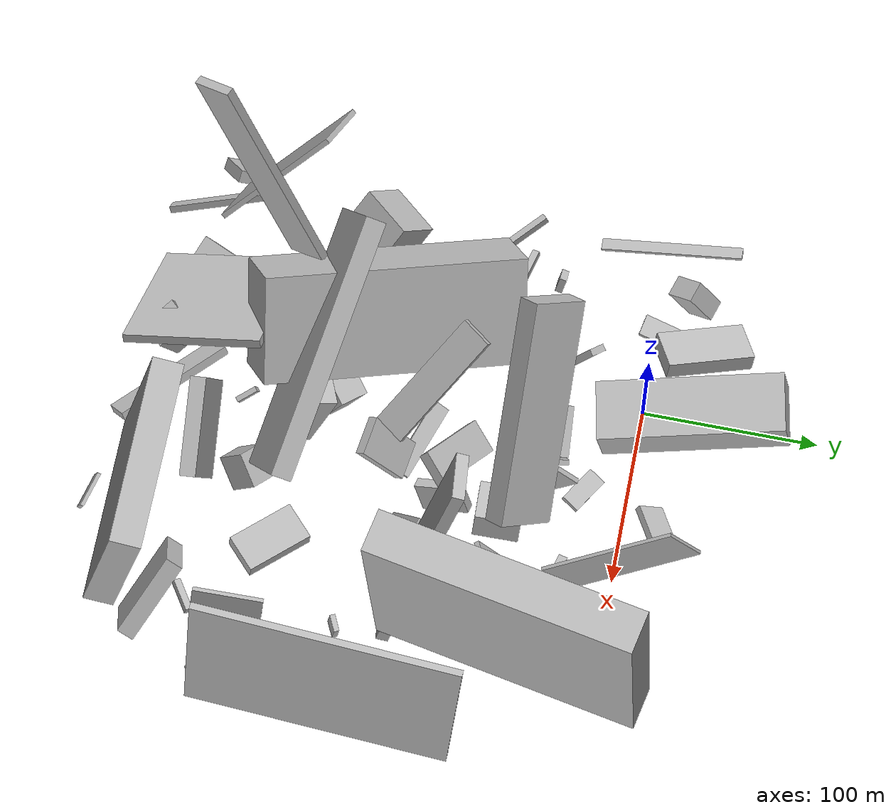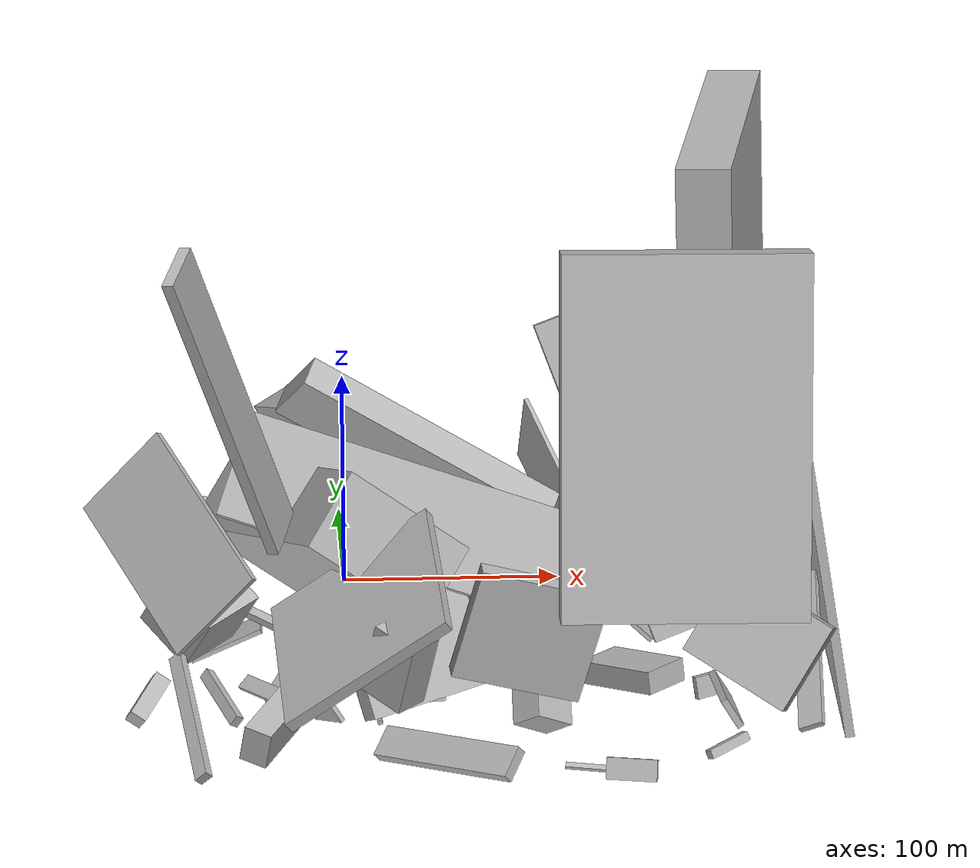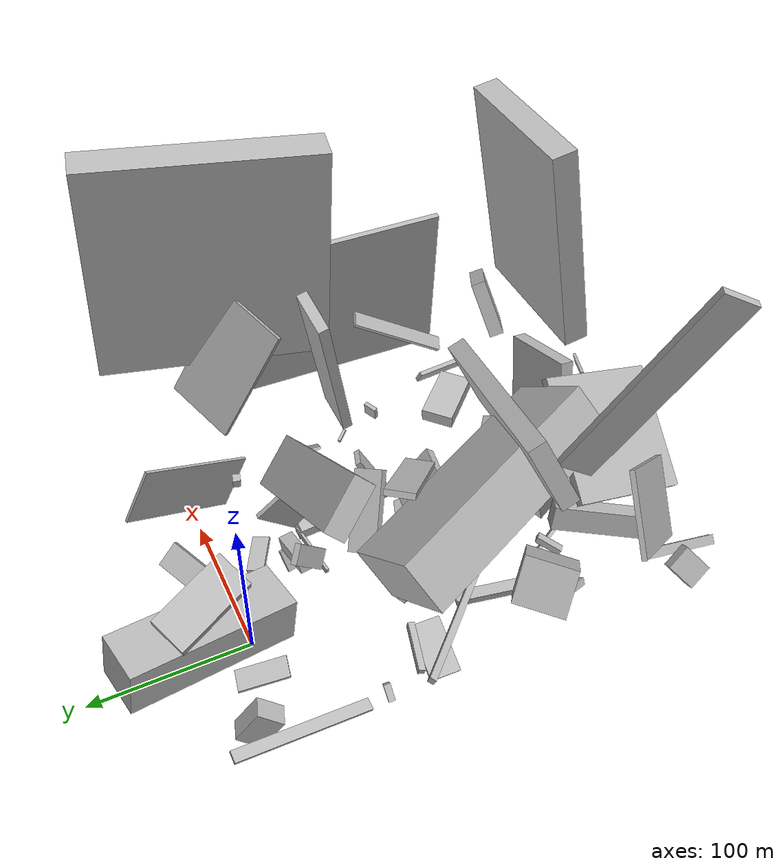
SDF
<sdf version="1.6">
 <world name="default">
  <model name="building_7">
   <static>0</static>
   <pose>-35.37634385524697 -79.82885916683912 56.13320116649942 1.1754656379227297 -0.8605714179726096 0.6549388538264809</pose>
   <link name="link">
    <gravity>0</gravity>
    <pose>0 0 75.0 0 0 0</pose>
    <collision name="collision"><geometry><box><size>36 62 150</size></box></geometry></collision>
    <visual name="visual">
     <cast_shadows>0</cast_shadows>
     <geometry><box><size>36 62 150</size></box></geometry>
     <material>
      <script>
       <uri>model://HANNAS_wall/materials/scripts</uri>
       <uri>model://HANNAS_wall/materials/textures</uri>
       <name>vrc/HANNAS_wall</name>
      </script>
     </material>
    </visual>
   </link>
  </model>
  <model name="building_10">
   <static>0</static>
   <pose>199.75939614173308 -143.61442118987642 66.97941842244322 1.405398066791633 0.032576267483294154 1.5148054013510757</pose>
   <link name="link">
    <gravity>0</gravity>
    <pose>0 0 2.0 0 0 0</pose>
    <collision name="collision"><geometry><box><size>150 128 4</size></box></geometry></collision>
    <visual name="visual">
     <cast_shadows>0</cast_shadows>
     <geometry><box><size>150 128 4</size></box></geometry>
     <material>
      <script>
       <uri>model://HANNAS_wall/materials/scripts</uri>
       <uri>model://HANNAS_wall/materials/textures</uri>
       <name>vrc/HANNAS_wall</name>
      </script>
     </material>
    </visual>
   </link>
  </model>
  <model name="building_12">
   <static>0</static>
   <pose>17.908233750072107 31.308224539765238 23.376434881511734 -1.5877761756979039 -0.14215236009023843 1.7673965393844318</pose>
   <link name="link">
    <gravity>0</gravity>
    <pose>0 0 17.0 0 0 0</pose>
    <collision name="collision"><geometry><box><size>106 30 34</size></box></geometry></collision>
    <visual name="visual">
     <cast_shadows>0</cast_shadows>
     <geometry><box><size>106 30 34</size></box></geometry>
     <material>
      <script>
       <uri>model://HANNAS_wall/materials/scripts</uri>
       <uri>model://HANNAS_wall/materials/textures</uri>
       <name>vrc/HANNAS_wall</name>
      </script>
     </material>
    </visual>
   </link>
  </model>
  <model name="building_13">
   <static>0</static>
   <pose>87.20154148661504 -56.308859797103885 48.33672092008506 -0.8636523174317932 0.6482194262004974 2.0591435352742304</pose>
   <link name="link">
    <gravity>0</gravity>
    <pose>0 0 64.0 0 0 0</pose>
    <collision name="collision"><geometry><box><size>35 14 128</size></box></geometry></collision>
    <visual name="visual">
     <cast_shadows>0</cast_shadows>
     <geometry><box><size>35 14 128</size></box></geometry>
     <material>
      <script>
       <uri>model://HANNAS_wall/materials/scripts</uri>
       <uri>model://HANNAS_wall/materials/textures</uri>
       <name>vrc/HANNAS_wall</name>
      </script>
     </material>
    </visual>
   </link>
  </model>
  <model name="building_18">
   <static>0</static>
   <pose>-22.268983301284038 -231.2250630682057 27.73519998412533 1.3262885029804963 0.15194075545650287 -2.017616570688222</pose>
   <link name="link">
    <gravity>0</gravity>
    <pose>0 0 6.0 0 0 0</pose>
    <collision name="collision"><geometry><box><size>71 16 12</size></box></geometry></collision>
    <visual name="visual">
     <cast_shadows>0</cast_shadows>
     <geometry><box><size>71 16 12</size></box></geometry>
     <material>
      <script>
       <uri>model://HANNAS_wall/materials/scripts</uri>
       <uri>model://HANNAS_wall/materials/textures</uri>
       <name>vrc/HANNAS_wall</name>
      </script>
     </material>
    </visual>
   </link>
  </model>
  <model name="building_22">
   <static>0</static>
   <pose>172.64674540773686 -43.25319528702598 83.02658972019377 0.050844142049338854 -0.028690400749932152 -0.19970684529259325</pose>
   <link name="link">
    <gravity>0</gravity>
    <pose>0 0 75.0 0 0 0</pose>
    <collision name="collision"><geometry><box><size>24 150 150</size></box></geometry></collision>
    <visual name="visual">
     <cast_shadows>0</cast_shadows>
     <geometry><box><size>24 150 150</size></box></geometry>
     <material>
      <script>
       <uri>model://HANNAS_wall/materials/scripts</uri>
       <uri>model://HANNAS_wall/materials/textures</uri>
       <name>vrc/HANNAS_wall</name>
      </script>
     </material>
    </visual>
   </link>
  </model>
  <model name="building_32">
   <static>0</static>
   <pose>91.9595428296833 -193.96650068513972 73.536874218739 -0.9692957055522151 -1.053303232051189 0.8513703144813367</pose>
   <link name="link">
    <gravity>0</gravity>
    <pose>0 0 75.0 0 0 0</pose>
    <collision name="collision"><geometry><box><size>46 12 150</size></box></geometry></collision>
    <visual name="visual">
     <cast_shadows>0</cast_shadows>
     <geometry><box><size>46 12 150</size></box></geometry>
     <material>
      <script>
       <uri>model://HANNAS_wall/materials/scripts</uri>
       <uri>model://HANNAS_wall/materials/textures</uri>
       <name>vrc/HANNAS_wall</name>
      </script>
     </material>
    </visual>
   </link>
  </model>
  <model name="building_33">
   <static>0</static>
   <pose>-71.28533931900245 -152.53147932357862 36.358138684460314 0.6634080557702714 -0.13776527083720133 0.8522295252504025</pose>
   <link name="link">
    <gravity>0</gravity>
    <pose>0 0 14.5 0 0 0</pose>
    <collision name="collision"><geometry><box><size>32 29 29</size></box></geometry></collision>
    <visual name="visual">
     <cast_shadows>0</cast_shadows>
     <geometry><box><size>32 29 29</size></box></geometry>
     <material>
      <script>
       <uri>model://HANNAS_wall/materials/scripts</uri>
       <uri>model://HANNAS_wall/materials/textures</uri>
       <name>vrc/HANNAS_wall</name>
      </script>
     </material>
    </visual>
   </link>
  </model>
  <model name="building_34">
   <static>0</static>
   <pose>-33.68719308623065 -143.24230125763256 4.944371780354979 1.5215713787839003 0.035612869714398254 1.3541824433385397</pose>
   <link name="link">
    <gravity>0</gravity>
    <pose>0 0 4.0 0 0 0</pose>
    <collision name="collision"><geometry><box><size>42 5 8</size></box></geometry></collision>
    <visual name="visual">
     <cast_shadows>0</cast_shadows>
     <geometry><box><size>42 5 8</size></box></geometry>
     <material>
      <script>
       <uri>model://HANNAS_wall/materials/scripts</uri>
       <uri>model://HANNAS_wall/materials/textures</uri>
       <name>vrc/HANNAS_wall</name>
      </script>
     </material>
    </visual>
   </link>
  </model>
  <model name="building_36">
   <static>0</static>
   <pose>49.215279147849266 -135.31893218015455 49.75282604158086 0.00441759923636645 -1.0238554763739798 -0.6480272119935063</pose>
   <link name="link">
    <gravity>0</gravity>
    <pose>0 0 38.5 0 0 0</pose>
    <collision name="collision"><geometry><box><size>4 19 77</size></box></geometry></collision>
    <visual name="visual">
     <cast_shadows>0</cast_shadows>
     <geometry><box><size>4 19 77</size></box></geometry>
     <material>
      <script>
       <uri>model://HANNAS_wall/materials/scripts</uri>
       <uri>model://HANNAS_wall/materials/textures</uri>
       <name>vrc/HANNAS_wall</name>
      </script>
     </material>
    </visual>
   </link>
  </model>
  <model name="building_39">
   <static>0</static>
   <pose>131.83799169275468 -269.7795638189098 79.52496255320497 0.168060298486547 -0.0031725530876417518 3.120574097686258</pose>
   <link name="link">
    <gravity>0</gravity>
    <pose>0 0 75.0 0 0 0</pose>
    <collision name="collision"><geometry><box><size>101 17 150</size></box></geometry></collision>
    <visual name="visual">
     <cast_shadows>0</cast_shadows>
     <geometry><box><size>101 17 150</size></box></geometry>
     <material>
      <script>
       <uri>model://HANNAS_wall/materials/scripts</uri>
       <uri>model://HANNAS_wall/materials/textures</uri>
       <name>vrc/HANNAS_wall</name>
      </script>
     </material>
    </visual>
   </link>
  </model>
  <model name="building_44">
   <static>0</static>
   <pose>64.78497882888301 -234.77074590187974 39.113507703404125 0.26298915779767845 -0.10905409287850117 1.6149011173050838</pose>
   <link name="link">
    <gravity>0</gravity>
    <pose>0 0 24.5 0 0 0</pose>
    <collision name="collision"><geometry><box><size>9 55 49</size></box></geometry></collision>
    <visual name="visual">
     <cast_shadows>0</cast_shadows>
     <geometry><box><size>9 55 49</size></box></geometry>
     <material>
      <script>
       <uri>model://HANNAS_wall/materials/scripts</uri>
       <uri>model://HANNAS_wall/materials/textures</uri>
       <name>vrc/HANNAS_wall</name>
      </script>
     </material>
    </visual>
   </link>
  </model>
  <model name="building_45">
   <static>0</static>
   <pose>-2.3374599007737764 -46.32025745562147 57.74331357457602 -0.7066894888824856 0.2311759284176999 0.6486493947640833</pose>
   <link name="link">
    <gravity>0</gravity>
    <pose>0 0 13.5 0 0 0</pose>
    <collision name="collision"><geometry><box><size>4 12 27</size></box></geometry></collision>
    <visual name="visual">
     <cast_shadows>0</cast_shadows>
     <geometry><box><size>4 12 27</size></box></geometry>
     <material>
      <script>
       <uri>model://HANNAS_wall/materials/scripts</uri>
       <uri>model://HANNAS_wall/materials/textures</uri>
       <name>vrc/HANNAS_wall</name>
      </script>
     </material>
    </visual>
   </link>
  </model>
  <model name="building_50">
   <static>0</static>
   <pose>-50.007280251557816 -116.54742318687431 30.07060712135791 1.1734598578645496 -0.1238292233177805 2.3688436630812255</pose>
   <link name="link">
    <gravity>0</gravity>
    <pose>0 0 2.0 0 0 0</pose>
    <collision name="collision"><geometry><box><size>121 4 4</size></box></geometry></collision>
    <visual name="visual">
     <cast_shadows>0</cast_shadows>
     <geometry><box><size>121 4 4</size></box></geometry>
     <material>
      <script>
       <uri>model://HANNAS_wall/materials/scripts</uri>
       <uri>model://HANNAS_wall/materials/textures</uri>
       <name>vrc/HANNAS_wall</name>
      </script>
     </material>
    </visual>
   </link>
  </model>
  <model name="building_53">
   <static>0</static>
   <pose>155.4479542393781 -233.94839806982225 7.496286353064457 0.21088196611619606 -0.36546871958466587 -1.0786684601524745</pose>
   <link name="link">
    <gravity>0</gravity>
    <pose>0 0 2.0 0 0 0</pose>
    <collision name="collision"><geometry><box><size>4 20 4</size></box></geometry></collision>
    <visual name="visual">
     <cast_shadows>0</cast_shadows>
     <geometry><box><size>4 20 4</size></box></geometry>
     <material>
      <script>
       <uri>model://HANNAS_wall/materials/scripts</uri>
       <uri>model://HANNAS_wall/materials/textures</uri>
       <name>vrc/HANNAS_wall</name>
      </script>
     </material>
    </visual>
   </link>
  </model>
  <model name="building_56">
   <static>0</static>
   <pose>69.1954099731737 13.63000319779589 13.742093269518962 2.2745068184563633 0.24545827281064708 -2.6317668817020405</pose>
   <link name="link">
    <gravity>0</gravity>
    <pose>0 0 8.5 0 0 0</pose>
    <collision name="collision"><geometry><box><size>28 4 17</size></box></geometry></collision>
    <visual name="visual">
     <cast_shadows>0</cast_shadows>
     <geometry><box><size>28 4 17</size></box></geometry>
     <material>
      <script>
       <uri>model://HANNAS_wall/materials/scripts</uri>
       <uri>model://HANNAS_wall/materials/textures</uri>
       <name>vrc/HANNAS_wall</name>
      </script>
     </material>
    </visual>
   </link>
  </model>
  <model name="building_58">
   <static>0</static>
   <pose>108.52481175404357 -104.49655727785829 81.31508576585884 1.2178762922116644 0.24379695146147823 1.5781546404994415</pose>
   <link name="link">
    <gravity>0</gravity>
    <pose>0 0 14.5 0 0 0</pose>
    <collision name="collision"><geometry><box><size>7 150 29</size></box></geometry></collision>
    <visual name="visual">
     <cast_shadows>0</cast_shadows>
     <geometry><box><size>7 150 29</size></box></geometry>
     <material>
      <script>
       <uri>model://HANNAS_wall/materials/scripts</uri>
       <uri>model://HANNAS_wall/materials/textures</uri>
       <name>vrc/HANNAS_wall</name>
      </script>
     </material>
    </visual>
   </link>
  </model>
  <model name="building_59">
   <static>0</static>
   <pose>-26.419378541625115 -197.28226236068653 13.516423411139069 -0.4803108394194448 -1.1122833938062404 -1.839298568274974</pose>
   <link name="link">
    <gravity>0</gravity>
    <pose>0 0 8.5 0 0 0</pose>
    <collision name="collision"><geometry><box><size>4 6 17</size></box></geometry></collision>
    <visual name="visual">
     <cast_shadows>0</cast_shadows>
     <geometry><box><size>4 6 17</size></box></geometry>
     <material>
      <script>
       <uri>model://HANNAS_wall/materials/scripts</uri>
       <uri>model://HANNAS_wall/materials/textures</uri>
       <name>vrc/HANNAS_wall</name>
      </script>
     </material>
    </visual>
   </link>
  </model>
  <model name="building_60">
   <static>0</static>
   <pose>33.11947779333519 -268.7866759939115 16.441630369520958 -0.8228746604277672 -0.12817011528214037 -0.7513610370837019</pose>
   <link name="link">
    <gravity>0</gravity>
    <pose>0 0 7.0 0 0 0</pose>
    <collision name="collision"><geometry><box><size>71 5 14</size></box></geometry></collision>
    <visual name="visual">
     <cast_shadows>0</cast_shadows>
     <geometry><box><size>71 5 14</size></box></geometry>
     <material>
      <script>
       <uri>model://HANNAS_wall/materials/scripts</uri>
       <uri>model://HANNAS_wall/materials/textures</uri>
       <name>vrc/HANNAS_wall</name>
      </script>
     </material>
    </visual>
   </link>
  </model>
  <model name="building_64">
   <static>0</static>
   <pose>-66.87548697713719 -253.3807809913465 36.672569554358866 2.5720921173396873 -0.6899166310533925 -2.5833922344450846</pose>
   <link name="link">
    <gravity>0</gravity>
    <pose>0 0 3.0 0 0 0</pose>
    <collision name="collision"><geometry><box><size>4 69 6</size></box></geometry></collision>
    <visual name="visual">
     <cast_shadows>0</cast_shadows>
     <geometry><box><size>4 69 6</size></box></geometry>
     <material>
      <script>
       <uri>model://HANNAS_wall/materials/scripts</uri>
       <uri>model://HANNAS_wall/materials/textures</uri>
       <name>vrc/HANNAS_wall</name>
      </script>
     </material>
    </visual>
   </link>
  </model>
  <model name="building_72">
   <static>0</static>
   <pose>96.56457738968938 -111.81023292704425 21.73531033113897 3.0313253054567517 -0.5228746418652945 -1.8355462850413922</pose>
   <link name="link">
    <gravity>0</gravity>
    <pose>0 0 18.5 0 0 0</pose>
    <collision name="collision"><geometry><box><size>4 14 37</size></box></geometry></collision>
    <visual name="visual">
     <cast_shadows>0</cast_shadows>
     <geometry><box><size>4 14 37</size></box></geometry>
     <material>
      <script>
       <uri>model://HANNAS_wall/materials/scripts</uri>
       <uri>model://HANNAS_wall/materials/textures</uri>
       <name>vrc/HANNAS_wall</name>
      </script>
     </material>
    </visual>
   </link>
  </model>
  <model name="building_75">
   <static>0</static>
   <pose>-63.362825687802946 -59.040237959251385 7.06525280667139 -2.9125874984584805 -0.878391726646444 2.8222759313478307</pose>
   <link name="link">
    <gravity>0</gravity>
    <pose>0 0 5.0 0 0 0</pose>
    <collision name="collision"><geometry><box><size>9 4 10</size></box></geometry></collision>
    <visual name="visual">
     <cast_shadows>0</cast_shadows>
     <geometry><box><size>9 4 10</size></box></geometry>
     <material>
      <script>
       <uri>model://HANNAS_wall/materials/scripts</uri>
       <uri>model://HANNAS_wall/materials/textures</uri>
       <name>vrc/HANNAS_wall</name>
      </script>
     </material>
    </visual>
   </link>
  </model>
  <model name="building_84">
   <static>0</static>
   <pose>23.313737929200833 -183.81271287851925 35.012860050426625 1.159458082971915 -0.14453334220382857 0.39535378233317103</pose>
   <link name="link">
    <gravity>0</gravity>
    <pose>0 0 6.5 0 0 0</pose>
    <collision name="collision"><geometry><box><size>56 45 13</size></box></geometry></collision>
    <visual name="visual">
     <cast_shadows>0</cast_shadows>
     <geometry><box><size>56 45 13</size></box></geometry>
     <material>
      <script>
       <uri>model://HANNAS_wall/materials/scripts</uri>
       <uri>model://HANNAS_wall/materials/textures</uri>
       <name>vrc/HANNAS_wall</name>
      </script>
     </material>
    </visual>
   </link>
  </model>
  <model name="building_87">
   <static>0</static>
   <pose>70.89832755230304 -100.32400841762704 19.612064522209874 0.8037827863147003 0.9977223175366955 0.6993339110236455</pose>
   <link name="link">
    <gravity>0</gravity>
    <pose>0 0 3.0 0 0 0</pose>
    <collision name="collision"><geometry><box><size>19 28 6</size></box></geometry></collision>
    <visual name="visual">
     <cast_shadows>0</cast_shadows>
     <geometry><box><size>19 28 6</size></box></geometry>
     <material>
      <script>
       <uri>model://HANNAS_wall/materials/scripts</uri>
       <uri>model://HANNAS_wall/materials/textures</uri>
       <name>vrc/HANNAS_wall</name>
      </script>
     </material>
    </visual>
   </link>
  </model>
  <model name="building_93">
   <static>0</static>
   <pose>-30.481836479223038 -195.4365668072988 92.8438439422064 0.12599349872146184 0.4600800718592492 -1.9220680034147755</pose>
   <link name="link">
    <gravity>0</gravity>
    <pose>0 0 75.0 0 0 0</pose>
    <collision name="collision"><geometry><box><size>23 5 150</size></box></geometry></collision>
    <visual name="visual">
     <cast_shadows>0</cast_shadows>
     <geometry><box><size>23 5 150</size></box></geometry>
     <material>
      <script>
       <uri>model://HANNAS_wall/materials/scripts</uri>
       <uri>model://HANNAS_wall/materials/textures</uri>
       <name>vrc/HANNAS_wall</name>
      </script>
     </material>
    </visual>
   </link>
  </model>
  <model name="building_106">
   <static>0</static>
   <pose>-17.4118637266251 27.78828804562293 73.47162409468842 0.2853214318696728 0.38434886794262685 -2.6629297845495286</pose>
   <link name="link">
    <gravity>0</gravity>
    <pose>0 0 5.0 0 0 0</pose>
    <collision name="collision"><geometry><box><size>24 50 10</size></box></geometry></collision>
    <visual name="visual">
     <cast_shadows>0</cast_shadows>
     <geometry><box><size>24 50 10</size></box></geometry>
     <material>
      <script>
       <uri>model://HANNAS_wall/materials/scripts</uri>
       <uri>model://HANNAS_wall/materials/textures</uri>
       <name>vrc/HANNAS_wall</name>
      </script>
     </material>
    </visual>
   </link>
  </model>
  <model name="building_107">
   <static>0</static>
   <pose>60.08371852460772 -58.76299733545688 25.49039952714471 0.24027399130807514 -0.7524399132463643 -1.7364088786548344</pose>
   <link name="link">
    <gravity>0</gravity>
    <pose>0 0 17.0 0 0 0</pose>
    <collision name="collision"><geometry><box><size>21 3 34</size></box></geometry></collision>
    <visual name="visual">
     <cast_shadows>0</cast_shadows>
     <geometry><box><size>21 3 34</size></box></geometry>
     <material>
      <script>
       <uri>model://HANNAS_wall/materials/scripts</uri>
       <uri>model://HANNAS_wall/materials/textures</uri>
       <name>vrc/HANNAS_wall</name>
      </script>
     </material>
    </visual>
   </link>
  </model>
  <model name="building_108">
   <static>0</static>
   <pose>98.50002690363178 4.221411163995349 43.257252587339934 1.7737225955355593 -1.0749172503486908 -1.471450806776961</pose>
   <link name="link">
    <gravity>0</gravity>
    <pose>0 0 1.0 0 0 0</pose>
    <collision name="collision"><geometry><box><size>38 80 2</size></box></geometry></collision>
    <visual name="visual">
     <cast_shadows>0</cast_shadows>
     <geometry><box><size>38 80 2</size></box></geometry>
     <material>
      <script>
       <uri>model://HANNAS_wall/materials/scripts</uri>
       <uri>model://HANNAS_wall/materials/textures</uri>
       <name>vrc/HANNAS_wall</name>
      </script>
     </material>
    </visual>
   </link>
  </model>
  <model name="building_119">
   <static>0</static>
   <pose>-75.31415522423003 -75.48455722264077 23.9809337167903 1.098776247730153 1.3501344351211788 0.8643768675484932</pose>
   <link name="link">
    <gravity>0</gravity>
    <pose>0 0 15.5 0 0 0</pose>
    <collision name="collision"><geometry><box><size>4 4 31</size></box></geometry></collision>
    <visual name="visual">
     <cast_shadows>0</cast_shadows>
     <geometry><box><size>4 4 31</size></box></geometry>
     <material>
      <script>
       <uri>model://HANNAS_wall/materials/scripts</uri>
       <uri>model://HANNAS_wall/materials/textures</uri>
       <name>vrc/HANNAS_wall</name>
      </script>
     </material>
    </visual>
   </link>
  </model>
  <model name="building_126">
   <static>0</static>
   <pose>-89.35485152231078 -244.5148847723813 41.429103621268105 2.255355123701436 0.5610254896399633 1.7952510407029476</pose>
   <link name="link">
    <gravity>0</gravity>
    <pose>0 0 3.5 0 0 0</pose>
    <collision name="collision"><geometry><box><size>16 20 7</size></box></geometry></collision>
    <visual name="visual">
     <cast_shadows>0</cast_shadows>
     <geometry><box><size>16 20 7</size></box></geometry>
     <material>
      <script>
       <uri>model://HANNAS_wall/materials/scripts</uri>
       <uri>model://HANNAS_wall/materials/textures</uri>
       <name>vrc/HANNAS_wall</name>
      </script>
     </material>
    </visual>
   </link>
  </model>
  <model name="building_127">
   <static>0</static>
   <pose>93.54362923344864 -267.34076190535325 13.821512581820741 0.5994830250498955 -0.062109138667866916 3.0184361337103134</pose>
   <link name="link">
    <gravity>0</gravity>
    <pose>0 0 1.0 0 0 0</pose>
    <collision name="collision"><geometry><box><size>19 5 2</size></box></geometry></collision>
    <visual name="visual">
     <cast_shadows>0</cast_shadows>
     <geometry><box><size>19 5 2</size></box></geometry>
     <material>
      <script>
       <uri>model://HANNAS_wall/materials/scripts</uri>
       <uri>model://HANNAS_wall/materials/textures</uri>
       <name>vrc/HANNAS_wall</name>
      </script>
     </material>
    </visual>
   </link>
  </model>
  <model name="building_129">
   <static>0</static>
   <pose>-13.534735177764452 -96.09616874507458 15.788831455635707 2.686089850440794 0.22526048981210936 -2.587595095165425</pose>
   <link name="link">
    <gravity>0</gravity>
    <pose>0 0 4.0 0 0 0</pose>
    <collision name="collision"><geometry><box><size>7 5 8</size></box></geometry></collision>
    <visual name="visual">
     <cast_shadows>0</cast_shadows>
     <geometry><box><size>7 5 8</size></box></geometry>
     <material>
      <script>
       <uri>model://HANNAS_wall/materials/scripts</uri>
       <uri>model://HANNAS_wall/materials/textures</uri>
       <name>vrc/HANNAS_wall</name>
      </script>
     </material>
    </visual>
   </link>
  </model>
  <model name="building_136">
   <static>0</static>
   <pose>41.23049265715227 -49.10954427201881 16.296661740837713 -1.8727963854365188 -1.121932633094822 0.44051252073023994</pose>
   <link name="link">
    <gravity>0</gravity>
    <pose>0 0 6.5 0 0 0</pose>
    <collision name="collision"><geometry><box><size>15 3 13</size></box></geometry></collision>
    <visual name="visual">
     <cast_shadows>0</cast_shadows>
     <geometry><box><size>15 3 13</size></box></geometry>
     <material>
      <script>
       <uri>model://HANNAS_wall/materials/scripts</uri>
       <uri>model://HANNAS_wall/materials/textures</uri>
       <name>vrc/HANNAS_wall</name>
      </script>
     </material>
    </visual>
   </link>
  </model>
  <model name="building_137">
   <static>0</static>
   <pose>126.26374140079078 -182.95722400676664 27.04557288245594 -1.766801723285184 -1.4336655440254324 2.5172683774285587</pose>
   <link name="link">
    <gravity>0</gravity>
    <pose>0 0 11.0 0 0 0</pose>
    <collision name="collision"><geometry><box><size>10 39 22</size></box></geometry></collision>
    <visual name="visual">
     <cast_shadows>0</cast_shadows>
     <geometry><box><size>10 39 22</size></box></geometry>
     <material>
      <script>
       <uri>model://HANNAS_wall/materials/scripts</uri>
       <uri>model://HANNAS_wall/materials/textures</uri>
       <name>vrc/HANNAS_wall</name>
      </script>
     </material>
    </visual>
   </link>
  </model>
  <model name="building_140">
   <static>0</static>
   <pose>46.49631884026705 -57.641219538425005 5.642510424950804 -0.05233936784188835 -0.17267889669221675 1.7009016991389605</pose>
   <link name="link">
    <gravity>0</gravity>
    <pose>0 0 1.5 0 0 0</pose>
    <collision name="collision"><geometry><box><size>2 39 3</size></box></geometry></collision>
    <visual name="visual">
     <cast_shadows>0</cast_shadows>
     <geometry><box><size>2 39 3</size></box></geometry>
     <material>
      <script>
       <uri>model://HANNAS_wall/materials/scripts</uri>
       <uri>model://HANNAS_wall/materials/textures</uri>
       <name>vrc/HANNAS_wall</name>
      </script>
     </material>
    </visual>
   </link>
  </model>
  <model name="building_143">
   <static>0</static>
   <pose>137.05927303771423 -117.23249978668044 5.0476645836357825 -2.9459706377708357 -0.00047494037041352025 -2.392436845082062</pose>
   <link name="link">
    <gravity>0</gravity>
    <pose>0 0 1.0 0 0 0</pose>
    <collision name="collision"><geometry><box><size>2 10 2</size></box></geometry></collision>
    <visual name="visual">
     <cast_shadows>0</cast_shadows>
     <geometry><box><size>2 10 2</size></box></geometry>
     <material>
      <script>
       <uri>model://HANNAS_wall/materials/scripts</uri>
       <uri>model://HANNAS_wall/materials/textures</uri>
       <name>vrc/HANNAS_wall</name>
      </script>
     </material>
    </visual>
   </link>
  </model>
  <model name="building_148">
   <static>0</static>
   <pose>-57.686073420116735 -242.53467708407317 74.2543616274438 -0.5481354811598864 -0.8262451922957693 -0.24366520074315925</pose>
   <link name="link">
    <gravity>0</gravity>
    <pose>0 0 40.0 0 0 0</pose>
    <collision name="collision"><geometry><box><size>48 3 80</size></box></geometry></collision>
    <visual name="visual">
     <cast_shadows>0</cast_shadows>
     <geometry><box><size>48 3 80</size></box></geometry>
     <material>
      <script>
       <uri>model://HANNAS_wall/materials/scripts</uri>
       <uri>model://HANNAS_wall/materials/textures</uri>
       <name>vrc/HANNAS_wall</name>
      </script>
     </material>
    </visual>
   </link>
  </model>
  <model name="building_153">
   <static>0</static>
   <pose>23.90564464320049 -270.02208302343854 57.250392175024956 0.1423327338092695 -1.2651979529083808 -0.878209848728906</pose>
   <link name="link">
    <gravity>0</gravity>
    <pose>0 0 10.5 0 0 0</pose>
    <collision name="collision"><geometry><box><size>31 16 21</size></box></geometry></collision>
    <visual name="visual">
     <cast_shadows>0</cast_shadows>
     <geometry><box><size>31 16 21</size></box></geometry>
     <material>
      <script>
       <uri>model://HANNAS_wall/materials/scripts</uri>
       <uri>model://HANNAS_wall/materials/textures</uri>
       <name>vrc/HANNAS_wall</name>
      </script>
     </material>
    </visual>
   </link>
  </model>
  <model name="building_154">
   <static>0</static>
   <pose>53.85221933490507 -24.994543772982876 10.214240322551097 -0.13895983484813249 -0.21042312598133797 -0.5313485502853129</pose>
   <link name="link">
    <gravity>0</gravity>
    <pose>0 0 1.5 0 0 0</pose>
    <collision name="collision"><geometry><box><size>24 11 3</size></box></geometry></collision>
    <visual name="visual">
     <cast_shadows>0</cast_shadows>
     <geometry><box><size>24 11 3</size></box></geometry>
     <material>
      <script>
       <uri>model://HANNAS_wall/materials/scripts</uri>
       <uri>model://HANNAS_wall/materials/textures</uri>
       <name>vrc/HANNAS_wall</name>
      </script>
     </material>
    </visual>
   </link>
  </model>
  <model name="building_156">
   <static>0</static>
   <pose>189.1847708088726 -186.03658737619062 31.209436501624584 1.0544793035238884 -0.5776392569100182 1.5020276465938514</pose>
   <link name="link">
    <gravity>0</gravity>
    <pose>0 0 5.5 0 0 0</pose>
    <collision name="collision"><geometry><box><size>80 3 11</size></box></geometry></collision>
    <visual name="visual">
     <cast_shadows>0</cast_shadows>
     <geometry><box><size>80 3 11</size></box></geometry>
     <material>
      <script>
       <uri>model://HANNAS_wall/materials/scripts</uri>
       <uri>model://HANNAS_wall/materials/textures</uri>
       <name>vrc/HANNAS_wall</name>
      </script>
     </material>
    </visual>
   </link>
  </model>
  <model name="building_161">
   <static>0</static>
   <pose>122.55104850252029 -52.28491210378138 86.14826575388263 -1.0359361342173434 -1.0263438896905746 -1.633003338200688</pose>
   <link name="link">
    <gravity>0</gravity>
    <pose>0 0 25.0 0 0 0</pose>
    <collision name="collision"><geometry><box><size>80 3 50</size></box></geometry></collision>
    <visual name="visual">
     <cast_shadows>0</cast_shadows>
     <geometry><box><size>80 3 50</size></box></geometry>
     <material>
      <script>
       <uri>model://HANNAS_wall/materials/scripts</uri>
       <uri>model://HANNAS_wall/materials/textures</uri>
       <name>vrc/HANNAS_wall</name>
      </script>
     </material>
    </visual>
   </link>
  </model>
  <model name="building_166">
   <static>0</static>
   <pose>56.18540395359969 -125.74243399245981 15.582373336251337 -0.7000177990028866 -0.01194083260762963 2.98764641047157</pose>
   <link name="link">
    <gravity>0</gravity>
    <pose>0 0 17.5 0 0 0</pose>
    <collision name="collision"><geometry><box><size>22 6 35</size></box></geometry></collision>
    <visual name="visual">
     <cast_shadows>0</cast_shadows>
     <geometry><box><size>22 6 35</size></box></geometry>
     <material>
      <script>
       <uri>model://HANNAS_wall/materials/scripts</uri>
       <uri>model://HANNAS_wall/materials/textures</uri>
       <name>vrc/HANNAS_wall</name>
      </script>
     </material>
    </visual>
   </link>
  </model>
  <model name="building_168">
   <static>0</static>
   <pose>126.35234471600978 -89.20535363871308 11.741714021698455 0.703524452157891 0.06345969024802613 1.3674053251373053</pose>
   <link name="link">
    <gravity>0</gravity>
    <pose>0 0 1.0 0 0 0</pose>
    <collision name="collision"><geometry><box><size>13 26 2</size></box></geometry></collision>
    <visual name="visual">
     <cast_shadows>0</cast_shadows>
     <geometry><box><size>13 26 2</size></box></geometry>
     <material>
      <script>
       <uri>model://HANNAS_wall/materials/scripts</uri>
       <uri>model://HANNAS_wall/materials/textures</uri>
       <name>vrc/HANNAS_wall</name>
      </script>
     </material>
    </visual>
   </link>
  </model>
  <model name="building_170">
   <static>0</static>
   <pose>109.1226802970296 -294.34869239231784 24.849225469123624 1.254445475956718 -0.025037504634251168 -0.2712656252163317</pose>
   <link name="link">
    <gravity>0</gravity>
    <pose>0 0 1.0 0 0 0</pose>
    <collision name="collision"><geometry><box><size>21 9 2</size></box></geometry></collision>
    <visual name="visual">
     <cast_shadows>0</cast_shadows>
     <geometry><box><size>21 9 2</size></box></geometry>
     <material>
      <script>
       <uri>model://HANNAS_wall/materials/scripts</uri>
       <uri>model://HANNAS_wall/materials/textures</uri>
       <name>vrc/HANNAS_wall</name>
      </script>
     </material>
    </visual>
   </link>
  </model>
  <model name="building_177">
   <static>0</static>
   <pose>85.49689429419772 -206.82294331142077 16.960554739009815 -0.8387476516456762 -0.8674748528538136 1.5807365390814612</pose>
   <link name="link">
    <gravity>0</gravity>
    <pose>0 0 10.0 0 0 0</pose>
    <collision name="collision"><geometry><box><size>19 15 20</size></box></geometry></collision>
    <visual name="visual">
     <cast_shadows>0</cast_shadows>
     <geometry><box><size>19 15 20</size></box></geometry>
     <material>
      <script>
       <uri>model://HANNAS_wall/materials/scripts</uri>
       <uri>model://HANNAS_wall/materials/textures</uri>
       <name>vrc/HANNAS_wall</name>
      </script>
     </material>
    </visual>
   </link>
  </model>
  <model name="building_179">
   <static>0</static>
   <pose>-50.29544261143343 -198.02476312030458 10.099811649593466 -1.2194967111388413 0.5044320250137145 0.5773169278087887</pose>
   <link name="link">
    <gravity>0</gravity>
    <pose>0 0 17.0 0 0 0</pose>
    <collision name="collision"><geometry><box><size>4 5 34</size></box></geometry></collision>
    <visual name="visual">
     <cast_shadows>0</cast_shadows>
     <geometry><box><size>4 5 34</size></box></geometry>
     <material>
      <script>
       <uri>model://HANNAS_wall/materials/scripts</uri>
       <uri>model://HANNAS_wall/materials/textures</uri>
       <name>vrc/HANNAS_wall</name>
      </script>
     </material>
    </visual>
   </link>
  </model>
  <model name="building_180">
   <static>0</static>
   <pose>10.388515714748475 -179.39314665191242 4.988918101889455 1.8289415908541653 1.2883552888211842 0.28355842325314007</pose>
   <link name="link">
    <gravity>0</gravity>
    <pose>0 0 4.5 0 0 0</pose>
    <collision name="collision"><geometry><box><size>2 2 9</size></box></geometry></collision>
    <visual name="visual">
     <cast_shadows>0</cast_shadows>
     <geometry><box><size>2 2 9</size></box></geometry>
     <material>
      <script>
       <uri>model://HANNAS_wall/materials/scripts</uri>
       <uri>model://HANNAS_wall/materials/textures</uri>
       <name>vrc/HANNAS_wall</name>
      </script>
     </material>
    </visual>
   </link>
  </model>
  <model name="building_188">
   <static>0</static>
   <pose>157.95353269957837 -207.29045761165582 20.44806569724399 3.0305213113754212 1.012377619567946 -0.06796662778782858</pose>
   <link name="link">
    <gravity>0</gravity>
    <pose>0 0 1.5 0 0 0</pose>
    <collision name="collision"><geometry><box><size>14 40 3</size></box></geometry></collision>
    <visual name="visual">
     <cast_shadows>0</cast_shadows>
     <geometry><box><size>14 40 3</size></box></geometry>
     <material>
      <script>
       <uri>model://HANNAS_wall/materials/scripts</uri>
       <uri>model://HANNAS_wall/materials/textures</uri>
       <name>vrc/HANNAS_wall</name>
      </script>
     </material>
    </visual>
   </link>
  </model>
  <model name="building_196">
   <static>0</static>
   <pose>19.175739838377513 -165.8315377292831 23.200356753356974 0.6296771759797432 -1.2082976239609733 1.6402280093707233</pose>
   <link name="link">
    <gravity>0</gravity>
    <pose>0 0 8.5 0 0 0</pose>
    <collision name="collision"><geometry><box><size>35 23 17</size></box></geometry></collision>
    <visual name="visual">
     <cast_shadows>0</cast_shadows>
     <geometry><box><size>35 23 17</size></box></geometry>
     <material>
      <script>
       <uri>model://HANNAS_wall/materials/scripts</uri>
       <uri>model://HANNAS_wall/materials/textures</uri>
       <name>vrc/HANNAS_wall</name>
      </script>
     </material>
    </visual>
   </link>
  </model>
  <model name="building_202">
   <static>0</static>
   <pose>-37.77308965830302 -165.13991035048576 14.58508682081505 3.0727322443616307 0.9172387170815431 0.5616193048415599</pose>
   <link name="link">
    <gravity>0</gravity>
    <pose>0 0 3.5 0 0 0</pose>
    <collision name="collision"><geometry><box><size>2 24 7</size></box></geometry></collision>
    <visual name="visual">
     <cast_shadows>0</cast_shadows>
     <geometry><box><size>2 24 7</size></box></geometry>
     <material>
      <script>
       <uri>model://HANNAS_wall/materials/scripts</uri>
       <uri>model://HANNAS_wall/materials/textures</uri>
       <name>vrc/HANNAS_wall</name>
      </script>
     </material>
    </visual>
   </link>
  </model>
  <model name="building_211">
   <static>0</static>
   <pose>26.635766611870253 -41.978690815628305 28.466357215693062 -0.25810220152353225 -0.07478352928654618 -1.4787837488274151</pose>
   <link name="link">
    <gravity>0</gravity>
    <pose>0 0 5.0 0 0 0</pose>
    <collision name="collision"><geometry><box><size>9 29 10</size></box></geometry></collision>
    <visual name="visual">
     <cast_shadows>0</cast_shadows>
     <geometry><box><size>9 29 10</size></box></geometry>
     <material>
      <script>
       <uri>model://HANNAS_wall/materials/scripts</uri>
       <uri>model://HANNAS_wall/materials/textures</uri>
       <name>vrc/HANNAS_wall</name>
      </script>
     </material>
    </visual>
   </link>
  </model>
  <model name="building_213">
   <static>0</static>
   <pose>47.80342123954395 -95.7776533832229 24.76259482063877 2.350088272346187 0.27354064169255 0.7482264681763526</pose>
   <link name="link">
    <gravity>0</gravity>
    <pose>0 0 3.0 0 0 0</pose>
    <collision name="collision"><geometry><box><size>20 54 6</size></box></geometry></collision>
    <visual name="visual">
     <cast_shadows>0</cast_shadows>
     <geometry><box><size>20 54 6</size></box></geometry>
     <material>
      <script>
       <uri>model://HANNAS_wall/materials/scripts</uri>
       <uri>model://HANNAS_wall/materials/textures</uri>
       <name>vrc/HANNAS_wall</name>
      </script>
     </material>
    </visual>
   </link>
  </model>
  <model name="building_217">
   <static>0</static>
   <pose>-10.656228042460475 -196.68081957433287 9.638161423386212 0.32283371664366206 0.46283802315758876 -2.562582354895027</pose>
   <link name="link">
    <gravity>0</gravity>
    <pose>0 0 4.0 0 0 0</pose>
    <collision name="collision"><geometry><box><size>2 26 8</size></box></geometry></collision>
    <visual name="visual">
     <cast_shadows>0</cast_shadows>
     <geometry><box><size>2 26 8</size></box></geometry>
     <material>
      <script>
       <uri>model://HANNAS_wall/materials/scripts</uri>
       <uri>model://HANNAS_wall/materials/textures</uri>
       <name>vrc/HANNAS_wall</name>
      </script>
     </material>
    </visual>
   </link>
  </model>
  <model name="building_225">
   <static>0</static>
   <pose>-31.467232871321677 -239.70854028354378 49.83029318786251 0.9259501518119003 -0.2720107400903052 1.630393108656631</pose>
   <link name="link">
    <gravity>0</gravity>
    <pose>0 0 40.0 0 0 0</pose>
    <collision name="collision"><geometry><box><size>80 5 80</size></box></geometry></collision>
    <visual name="visual">
     <cast_shadows>0</cast_shadows>
     <geometry><box><size>80 5 80</size></box></geometry>
     <material>
      <script>
       <uri>model://HANNAS_wall/materials/scripts</uri>
       <uri>model://HANNAS_wall/materials/textures</uri>
       <name>vrc/HANNAS_wall</name>
      </script>
     </material>
    </visual>
   </link>
  </model>
  <model name="building_229">
   <static>0</static>
   <pose>155.17633901050655 -249.30312173699866 44.85242920904673 0.37702695000349845 -0.43463473120223634 2.6614748034676756</pose>
   <link name="link">
    <gravity>0</gravity>
    <pose>0 0 20.0 0 0 0</pose>
    <collision name="collision"><geometry><box><size>49 10 40</size></box></geometry></collision>
    <visual name="visual">
     <cast_shadows>0</cast_shadows>
     <geometry><box><size>49 10 40</size></box></geometry>
     <material>
      <script>
       <uri>model://HANNAS_wall/materials/scripts</uri>
       <uri>model://HANNAS_wall/materials/textures</uri>
       <name>vrc/HANNAS_wall</name>
      </script>
     </material>
    </visual>
   </link>
  </model>
  <model name="building_235">
   <static>0</static>
   <pose>98.95632829273566 -28.144320752771034 31.245924616305093 -0.07986712085016602 -1.477915702773144 2.956820746370084</pose>
   <link name="link">
    <gravity>0</gravity>
    <pose>0 0 3.0 0 0 0</pose>
    <collision name="collision"><geometry><box><size>6 5 6</size></box></geometry></collision>
    <visual name="visual">
     <cast_shadows>0</cast_shadows>
     <geometry><box><size>6 5 6</size></box></geometry>
     <material>
      <script>
       <uri>model://HANNAS_wall/materials/scripts</uri>
       <uri>model://HANNAS_wall/materials/textures</uri>
       <name>vrc/HANNAS_wall</name>
      </script>
     </material>
    </visual>
   </link>
  </model>
  <model name="building_239">
   <static>0</static>
   <pose>86.1723381192431 -68.2567644639536 16.529553141803014 1.994857284221821 -0.04533792973669981 -1.5468948719827185</pose>
   <link name="link">
    <gravity>0</gravity>
    <pose>0 0 13.0 0 0 0</pose>
    <collision name="collision"><geometry><box><size>26 16 26</size></box></geometry></collision>
    <visual name="visual">
     <cast_shadows>0</cast_shadows>
     <geometry><box><size>26 16 26</size></box></geometry>
     <material>
      <script>
       <uri>model://HANNAS_wall/materials/scripts</uri>
       <uri>model://HANNAS_wall/materials/textures</uri>
       <name>vrc/HANNAS_wall</name>
      </script>
     </material>
    </visual>
   </link>
  </model>
  <model name="building_240">
   <static>0</static>
   <pose>-10.723179097044614 -131.7617748484284 22.561979924101614 -2.830954806058431 -1.080634365082363 0.8075558451516602</pose>
   <link name="link">
    <gravity>0</gravity>
    <pose>0 0 2.0 0 0 0</pose>
    <collision name="collision"><geometry><box><size>15 30 4</size></box></geometry></collision>
    <visual name="visual">
     <cast_shadows>0</cast_shadows>
     <geometry><box><size>15 30 4</size></box></geometry>
     <material>
      <script>
       <uri>model://HANNAS_wall/materials/scripts</uri>
       <uri>model://HANNAS_wall/materials/textures</uri>
       <name>vrc/HANNAS_wall</name>
      </script>
     </material>
    </visual>
   </link>
  </model>
  <model name="building_245">
   <static>0</static>
   <pose>-71.36635433021807 19.106743771653356 23.00276413774492 -1.6565210256186342 -0.9409704758976731 -1.8195624389601548</pose>
   <link name="link">
    <gravity>0</gravity>
    <pose>0 0 6.0 0 0 0</pose>
    <collision name="collision"><geometry><box><size>23 17 12</size></box></geometry></collision>
    <visual name="visual">
     <cast_shadows>0</cast_shadows>
     <geometry><box><size>23 17 12</size></box></geometry>
     <material>
      <script>
       <uri>model://HANNAS_wall/materials/scripts</uri>
       <uri>model://HANNAS_wall/materials/textures</uri>
       <name>vrc/HANNAS_wall</name>
      </script>
     </material>
    </visual>
   </link>
  </model>
  <model name="building_246">
   <static>0</static>
   <pose>153.60631696750133 -147.17425707272105 7.199268711556305 3.0667183870113255 0.17212238818911485 1.9934002786536607</pose>
   <link name="link">
    <gravity>0</gravity>
    <pose>0 0 5.0 0 0 0</pose>
    <collision name="collision"><geometry><box><size>3 10 10</size></box></geometry></collision>
    <visual name="visual">
     <cast_shadows>0</cast_shadows>
     <geometry><box><size>3 10 10</size></box></geometry>
     <material>
      <script>
       <uri>model://HANNAS_wall/materials/scripts</uri>
       <uri>model://HANNAS_wall/materials/textures</uri>
       <name>vrc/HANNAS_wall</name>
      </script>
     </material>
    </visual>
   </link>
  </model>
  <model name="building_250">
   <static>0</static>
   <pose>-54.7934772696271 -104.05542211669251 8.093774541802018 -1.574574645543446 1.1477159644750354 -0.034016413397521664</pose>
   <link name="link">
    <gravity>0</gravity>
    <pose>0 0 9.5 0 0 0</pose>
    <collision name="collision"><geometry><box><size>2 34 19</size></box></geometry></collision>
    <visual name="visual">
     <cast_shadows>0</cast_shadows>
     <geometry><box><size>2 34 19</size></box></geometry>
     <material>
      <script>
       <uri>model://HANNAS_wall/materials/scripts</uri>
       <uri>model://HANNAS_wall/materials/textures</uri>
       <name>vrc/HANNAS_wall</name>
      </script>
     </material>
    </visual>
   </link>
  </model>
  <model name="building_253">
   <static>0</static>
   <pose>-36.686734585920625 20.184510905264958 23.67256000684406 0.8361302175826562 1.3234904192279922 -0.9317350702473645</pose>
   <link name="link">
    <gravity>0</gravity>
    <pose>0 0 15.0 0 0 0</pose>
    <collision name="collision"><geometry><box><size>2 13 30</size></box></geometry></collision>
    <visual name="visual">
     <cast_shadows>0</cast_shadows>
     <geometry><box><size>2 13 30</size></box></geometry>
     <material>
      <script>
       <uri>model://HANNAS_wall/materials/scripts</uri>
       <uri>model://HANNAS_wall/materials/textures</uri>
       <name>vrc/HANNAS_wall</name>
      </script>
     </material>
    </visual>
   </link>
  </model>
  <model name="building_254">
   <static>0</static>
   <pose>28.145354037291217 -216.51665444324973 5.395743118343056 -2.9028163324810854 1.226591953180652 2.4527634794977513</pose>
   <link name="link">
    <gravity>0</gravity>
    <pose>0 0 6.5 0 0 0</pose>
    <collision name="collision"><geometry><box><size>5 3 13</size></box></geometry></collision>
    <visual name="visual">
     <cast_shadows>0</cast_shadows>
     <geometry><box><size>5 3 13</size></box></geometry>
     <material>
      <script>
       <uri>model://HANNAS_wall/materials/scripts</uri>
       <uri>model://HANNAS_wall/materials/textures</uri>
       <name>vrc/HANNAS_wall</name>
      </script>
     </material>
    </visual>
   </link>
  </model>
  <model name="building_260">
   <static>0</static>
   <pose>-91.00265427081399 -0.259843603185856 34.74240986461492 0.5632853452740719 1.2915124412313008 0.6121281397529135</pose>
   <link name="link">
    <gravity>0</gravity>
    <pose>0 0 3.5 0 0 0</pose>
    <collision name="collision"><geometry><box><size>2 80 7</size></box></geometry></collision>
    <visual name="visual">
     <cast_shadows>0</cast_shadows>
     <geometry><box><size>2 80 7</size></box></geometry>
     <material>
      <script>
       <uri>model://HANNAS_wall/materials/scripts</uri>
       <uri>model://HANNAS_wall/materials/textures</uri>
       <name>vrc/HANNAS_wall</name>
      </script>
     </material>
    </visual>
   </link>
  </model>
  <model name="building_261">
   <static>0</static>
   <pose>18.22783955137827 -112.50721191253618 5.663138146955726 1.4874363069209835 -1.1613815794860025 1.311209052684423</pose>
   <link name="link">
    <gravity>0</gravity>
    <pose>0 0 23.0 0 0 0</pose>
    <collision name="collision"><geometry><box><size>2 10 46</size></box></geometry></collision>
    <visual name="visual">
     <cast_shadows>0</cast_shadows>
     <geometry><box><size>2 10 46</size></box></geometry>
     <material>
      <script>
       <uri>model://HANNAS_wall/materials/scripts</uri>
       <uri>model://HANNAS_wall/materials/textures</uri>
       <name>vrc/HANNAS_wall</name>
      </script>
     </material>
    </visual>
   </link>
  </model>
 </world>
</sdf>
